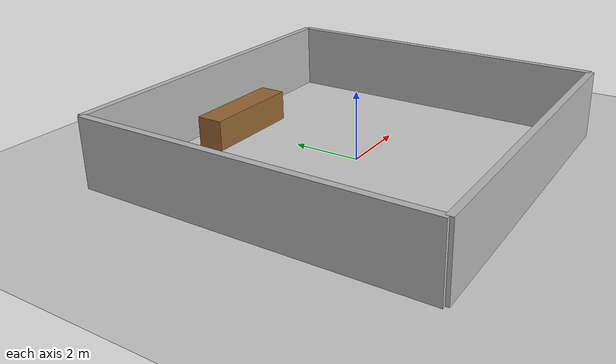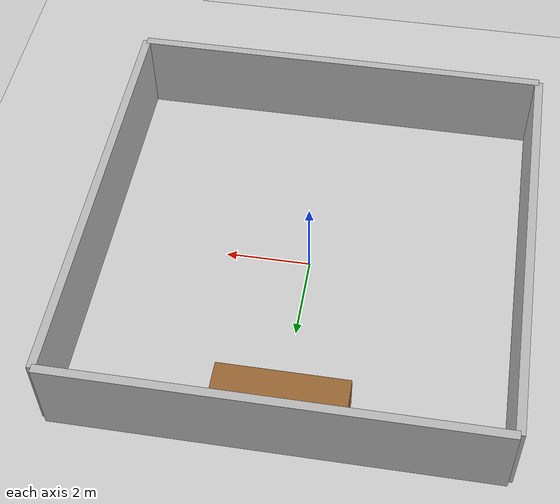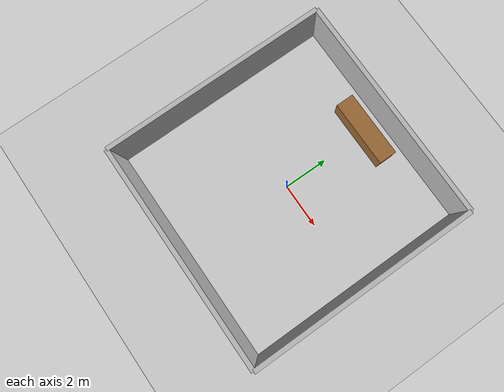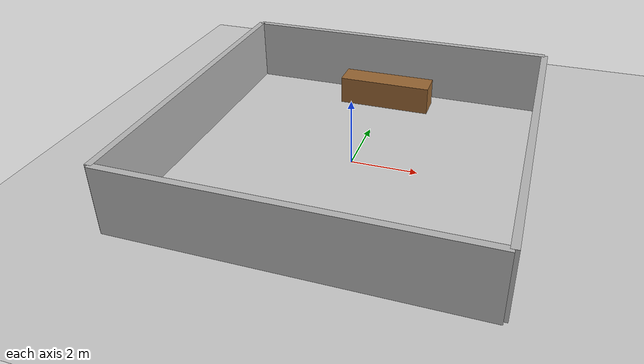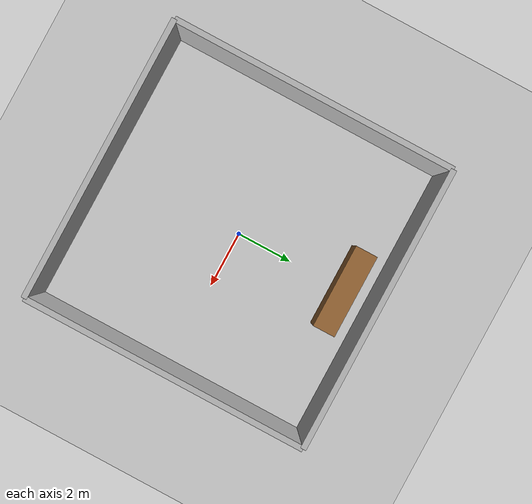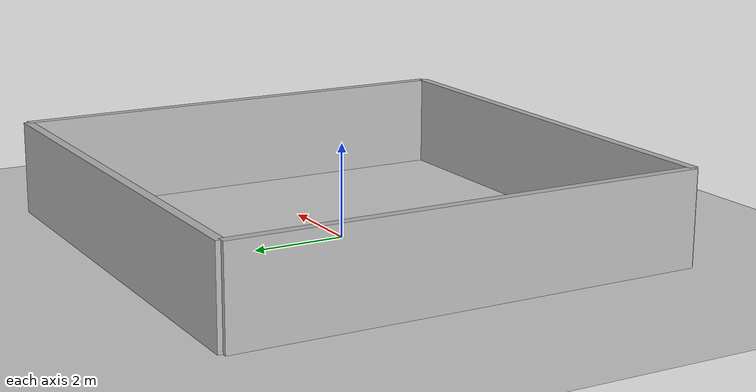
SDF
<sdf version="1.6">
 <world name="cafe_world">
  <physics type="ode">
   <real_time_update_rate>1000.0</real_time_update_rate>
   <max_step_size>0.001</max_step_size>
  </physics>
  <include><uri>model://sun</uri></include>
  <include><uri>model://ground_plane</uri></include>
  <model name="wall_south">
   <static>true</static>
   <pose>0 -5 1 0 0 0</pose>
   <link name="link">
    <collision name="c"><geometry><box><size>10 0.2 2</size></box></geometry></collision>
    <visual name="v"><geometry><box><size>10 0.2 2</size></box></geometry></visual>
   </link>
  </model>
  <model name="wall_north">
   <static>true</static>
   <pose>0 5 1 0 0 0</pose>
   <link name="link">
    <collision name="c"><geometry><box><size>10 0.2 2</size></box></geometry></collision>
    <visual name="v"><geometry><box><size>10 0.2 2</size></box></geometry></visual>
   </link>
  </model>
  <model name="wall_west">
   <static>true</static>
   <pose>-5 0 1 0 0 1.5708</pose>
   <link name="link">
    <collision name="c"><geometry><box><size>10 0.2 2</size></box></geometry></collision>
    <visual name="v"><geometry><box><size>10 0.2 2</size></box></geometry></visual>
   </link>
  </model>
  <model name="wall_east">
   <static>true</static>
   <pose>5 0 1 0 0 1.5708</pose>
   <link name="link">
    <collision name="c"><geometry><box><size>10 0.2 2</size></box></geometry></collision>
    <visual name="v"><geometry><box><size>10 0.2 2</size></box></geometry></visual>
   </link>
  </model>
  <model name="counter">
   <static>true</static>
   <pose>0 4 0.45 0 0 0</pose>
   <link name="link">
    <collision name="c"><geometry><box><size>3 0.8 0.9</size></box></geometry></collision>
    <visual name="v">
     <geometry><box><size>3 0.8 0.9</size></box></geometry>
     <material><ambient>0.6 0.4 0.2 1</ambient></material>
    </visual>
   </link>
  </model>
  <sensor name="camera" type="camera">
   <camera><horizontal_fov>1.047</horizontal_fov><image><width>640</width><height>480</height></image></camera>
   <plugin name="camera_plugin" filename="libgazebo_ros_camera.so">
    <ros><remapping>image_raw:=/camera/image_raw</remapping></ros>
   </plugin>
  </sensor>
 </world>
</sdf>
